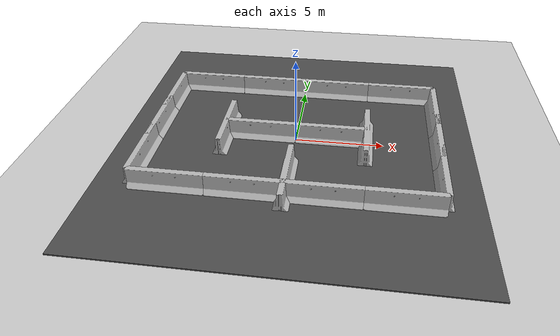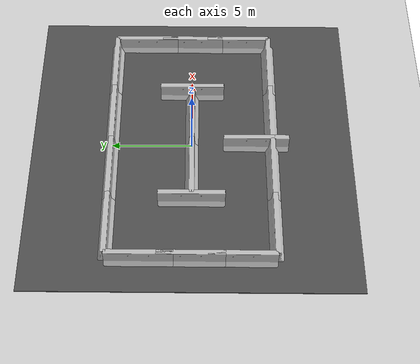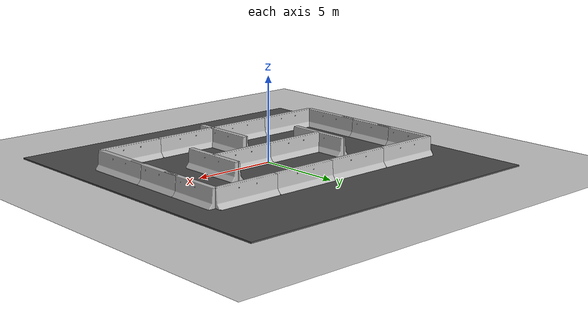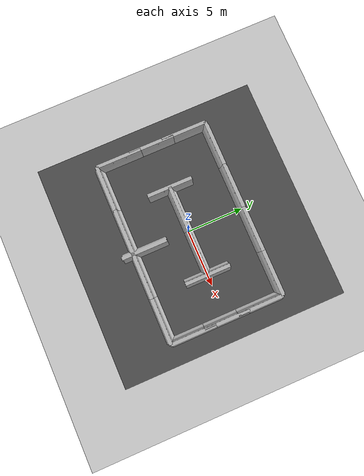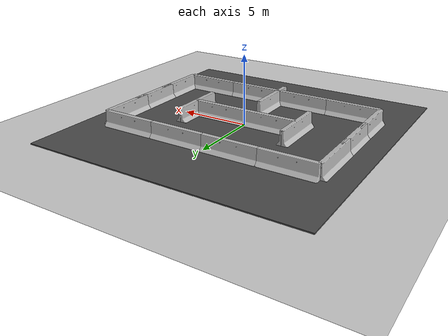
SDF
<sdf version="1.7">
 <world name="default">
  <light name="sun" type="directional">
   <pose>0 0 10 0 -0 0</pose>
   <diffuse>0.8 0.8 0.8 1</diffuse>
   <specular>0.2 0.2 0.2 1</specular>
   <attenuation>
    <range>1000</range>
    <constant>0.9</constant>
    <linear>0.01</linear>
    <quadratic>0.001</quadratic>
   </attenuation>
   <direction>-0.5 0.1 -0.9</direction>
   <spot><inner_angle>0</inner_angle><outer_angle>0</outer_angle><falloff>0</falloff></spot>
  </light>
  <model name="ground_plane">
   <static>1</static>
   <link name="link">
    <collision name="collision">
     <geometry><plane><normal>0 0 1</normal><size>100 100</size></plane></geometry>
     <surface>
      <contact><collide_bitmask>65535</collide_bitmask></contact>
      <friction><ode><mu>100</mu><mu2>50</mu2></ode></friction>
     </surface>
    </collision>
    <visual name="visual">
     <cast_shadows>0</cast_shadows>
     <geometry><plane><normal>0 0 1</normal><size>100 100</size></plane></geometry>
     <material>
      <script><uri>file://media/materials/scripts/gazebo.material</uri><name>Gazebo/Grey</name></script>
     </material>
    </visual>
   </link>
  </model>
  <gravity>0 0 -9.8</gravity>
  <magnetic_field>6e-06 2.3e-05 -4.2e-05</magnetic_field>
  <atmosphere type="adiabatic"/>
  <physics type="ode">
   <max_step_size>0.001</max_step_size>
   <real_time_factor>1</real_time_factor>
   <real_time_update_rate>1000</real_time_update_rate>
  </physics>
  <scene><ambient>0.4 0.4 0.4 1</ambient><background>0.7 0.7 0.7 1</background><shadows>1</shadows></scene>
  <audio><device>default</device></audio>
  <spherical_coordinates>
   <surface_model>EARTH_WGS84</surface_model>
   <latitude_deg>0</latitude_deg>
   <longitude_deg>0</longitude_deg>
   <elevation>0</elevation>
   <heading_deg>0</heading_deg>
  </spherical_coordinates>
  <model name="jersey_barrier">
   <static>1</static>
   <link name="link">
    <visual name="visual">
     <geometry><mesh><uri>model://jersey_barrier/meshes/jersey_barrier.dae</uri></mesh></geometry>
    </visual>
    <collision name="upright">
     <pose>0 0 0.5715 0 -0 0</pose>
     <geometry><box><size>4.06542 0.3063 1.143</size></box></geometry>
    </collision>
    <collision name="base">
     <pose>0 0 0.032258 0 -0 0</pose>
     <geometry><box><size>4.06542 0.8107 0.064516</size></box></geometry>
    </collision>
    <collision name="base2">
     <pose>0 0 0.1 0 -0 0</pose>
     <geometry><box><size>4.06542 0.65 0.1</size></box></geometry>
    </collision>
    <collision name="base3">
     <pose>0 0 0.2 0 -0 0</pose>
     <geometry><box><size>4.06542 0.5 0.1</size></box></geometry>
    </collision>
    <collision name="left-angle">
     <pose>0 -0.224 0.2401 0.9 -0 0</pose>
     <geometry><box><size>4.06542 0.5 0.064516</size></box></geometry>
    </collision>
    <collision name="right-angle">
     <pose>0 0.224 0.2401 -0.9 0 0</pose>
     <geometry><box><size>4.06542 0.5 0.064516</size></box></geometry>
    </collision>
   </link>
   <pose>2 5 0 0 -0 0</pose>
  </model>
  <model name="asphalt_plane">
   <static>1</static>
   <link name="link">
    <collision name="collision"><geometry><box><size>20 20 0.1</size></box></geometry></collision>
    <visual name="visual">
     <cast_shadows>0</cast_shadows>
     <geometry><box><size>20 20 0.1</size></box></geometry>
     <material>
      <script>
       <uri>model://asphalt_plane/materials/scripts</uri>
       <uri>model://asphalt_plane/materials/textures</uri>
       <name>vrc/asphalt</name>
      </script>
     </material>
    </visual>
   </link>
  </model>
  <model name="jersey_barrier_clone">
   <static>1</static>
   <link name="link">
    <visual name="visual">
     <geometry><mesh><uri>model://jersey_barrier/meshes/jersey_barrier.dae</uri></mesh></geometry>
    </visual>
    <collision name="upright">
     <pose>0 0 0.5715 0 -0 0</pose>
     <geometry><box><size>4.06542 0.3063 1.143</size></box></geometry>
    </collision>
    <collision name="base">
     <pose>0 0 0.032258 0 -0 0</pose>
     <geometry><box><size>4.06542 0.8107 0.064516</size></box></geometry>
    </collision>
    <collision name="base2">
     <pose>0 0 0.1 0 -0 0</pose>
     <geometry><box><size>4.06542 0.65 0.1</size></box></geometry>
    </collision>
    <collision name="base3">
     <pose>0 0 0.2 0 -0 0</pose>
     <geometry><box><size>4.06542 0.5 0.1</size></box></geometry>
    </collision>
    <collision name="left-angle">
     <pose>0 -0.224 0.2401 0.9 -0 0</pose>
     <geometry><box><size>4.06542 0.5 0.064516</size></box></geometry>
    </collision>
    <collision name="right-angle">
     <pose>0 0.224 0.2401 -0.9 0 0</pose>
     <geometry><box><size>4.06542 0.5 0.064516</size></box></geometry>
    </collision>
   </link>
   <pose>-2 5 0 0 -0 0</pose>
  </model>
  <model name="jersey_barrier_clone_0">
   <static>1</static>
   <link name="link">
    <visual name="visual">
     <geometry><mesh><uri>model://jersey_barrier/meshes/jersey_barrier.dae</uri></mesh></geometry>
    </visual>
    <collision name="upright">
     <pose>0 0 0.5715 0 -0 0</pose>
     <geometry><box><size>4.06542 0.3063 1.143</size></box></geometry>
    </collision>
    <collision name="base">
     <pose>0 0 0.032258 0 -0 0</pose>
     <geometry><box><size>4.06542 0.8107 0.064516</size></box></geometry>
    </collision>
    <collision name="base2">
     <pose>0 0 0.1 0 -0 0</pose>
     <geometry><box><size>4.06542 0.65 0.1</size></box></geometry>
    </collision>
    <collision name="base3">
     <pose>0 0 0.2 0 -0 0</pose>
     <geometry><box><size>4.06542 0.5 0.1</size></box></geometry>
    </collision>
    <collision name="left-angle">
     <pose>0 -0.224 0.2401 0.9 -0 0</pose>
     <geometry><box><size>4.06542 0.5 0.064516</size></box></geometry>
    </collision>
    <collision name="right-angle">
     <pose>0 0.224 0.2401 -0.9 0 0</pose>
     <geometry><box><size>4.06542 0.5 0.064516</size></box></geometry>
    </collision>
   </link>
   <pose>-6 5 0 0 -0 0</pose>
  </model>
  <model name="jersey_barrier_clone_1">
   <static>1</static>
   <link name="link">
    <visual name="visual">
     <geometry><mesh><uri>model://jersey_barrier/meshes/jersey_barrier.dae</uri></mesh></geometry>
    </visual>
    <collision name="upright">
     <pose>0 0 0.5715 0 -0 0</pose>
     <geometry><box><size>4.06542 0.3063 1.143</size></box></geometry>
    </collision>
    <collision name="base">
     <pose>0 0 0.032258 0 -0 0</pose>
     <geometry><box><size>4.06542 0.8107 0.064516</size></box></geometry>
    </collision>
    <collision name="base2">
     <pose>0 0 0.1 0 -0 0</pose>
     <geometry><box><size>4.06542 0.65 0.1</size></box></geometry>
    </collision>
    <collision name="base3">
     <pose>0 0 0.2 0 -0 0</pose>
     <geometry><box><size>4.06542 0.5 0.1</size></box></geometry>
    </collision>
    <collision name="left-angle">
     <pose>0 -0.224 0.2401 0.9 -0 0</pose>
     <geometry><box><size>4.06542 0.5 0.064516</size></box></geometry>
    </collision>
    <collision name="right-angle">
     <pose>0 0.224 0.2401 -0.9 0 0</pose>
     <geometry><box><size>4.06542 0.5 0.064516</size></box></geometry>
    </collision>
   </link>
   <pose>6 5 0 0 -0 0</pose>
  </model>
  <model name="jersey_barrier_clone_2">
   <static>1</static>
   <link name="link">
    <visual name="visual">
     <geometry><mesh><uri>model://jersey_barrier/meshes/jersey_barrier.dae</uri></mesh></geometry>
    </visual>
    <collision name="upright">
     <pose>0 0 0.5715 0 -0 0</pose>
     <geometry><box><size>4.06542 0.3063 1.143</size></box></geometry>
    </collision>
    <collision name="base">
     <pose>0 0 0.032258 0 -0 0</pose>
     <geometry><box><size>4.06542 0.8107 0.064516</size></box></geometry>
    </collision>
    <collision name="base2">
     <pose>0 0 0.1 0 -0 0</pose>
     <geometry><box><size>4.06542 0.65 0.1</size></box></geometry>
    </collision>
    <collision name="base3">
     <pose>0 0 0.2 0 -0 0</pose>
     <geometry><box><size>4.06542 0.5 0.1</size></box></geometry>
    </collision>
    <collision name="left-angle">
     <pose>0 -0.224 0.2401 0.9 -0 0</pose>
     <geometry><box><size>4.06542 0.5 0.064516</size></box></geometry>
    </collision>
    <collision name="right-angle">
     <pose>0 0.224 0.2401 -0.9 0 0</pose>
     <geometry><box><size>4.06542 0.5 0.064516</size></box></geometry>
    </collision>
   </link>
   <pose>-2 -5 0 0 -0 0</pose>
  </model>
  <model name="jersey_barrier_clone_3">
   <static>1</static>
   <link name="link">
    <visual name="visual">
     <geometry><mesh><uri>model://jersey_barrier/meshes/jersey_barrier.dae</uri></mesh></geometry>
    </visual>
    <collision name="upright">
     <pose>0 0 0.5715 0 -0 0</pose>
     <geometry><box><size>4.06542 0.3063 1.143</size></box></geometry>
    </collision>
    <collision name="base">
     <pose>0 0 0.032258 0 -0 0</pose>
     <geometry><box><size>4.06542 0.8107 0.064516</size></box></geometry>
    </collision>
    <collision name="base2">
     <pose>0 0 0.1 0 -0 0</pose>
     <geometry><box><size>4.06542 0.65 0.1</size></box></geometry>
    </collision>
    <collision name="base3">
     <pose>0 0 0.2 0 -0 0</pose>
     <geometry><box><size>4.06542 0.5 0.1</size></box></geometry>
    </collision>
    <collision name="left-angle">
     <pose>0 -0.224 0.2401 0.9 -0 0</pose>
     <geometry><box><size>4.06542 0.5 0.064516</size></box></geometry>
    </collision>
    <collision name="right-angle">
     <pose>0 0.224 0.2401 -0.9 0 0</pose>
     <geometry><box><size>4.06542 0.5 0.064516</size></box></geometry>
    </collision>
   </link>
   <pose>2 -5 0 0 -0 0</pose>
  </model>
  <model name="jersey_barrier_clone_4">
   <static>1</static>
   <link name="link">
    <visual name="visual">
     <geometry><mesh><uri>model://jersey_barrier/meshes/jersey_barrier.dae</uri></mesh></geometry>
    </visual>
    <collision name="upright">
     <pose>0 0 0.5715 0 -0 0</pose>
     <geometry><box><size>4.06542 0.3063 1.143</size></box></geometry>
    </collision>
    <collision name="base">
     <pose>0 0 0.032258 0 -0 0</pose>
     <geometry><box><size>4.06542 0.8107 0.064516</size></box></geometry>
    </collision>
    <collision name="base2">
     <pose>0 0 0.1 0 -0 0</pose>
     <geometry><box><size>4.06542 0.65 0.1</size></box></geometry>
    </collision>
    <collision name="base3">
     <pose>0 0 0.2 0 -0 0</pose>
     <geometry><box><size>4.06542 0.5 0.1</size></box></geometry>
    </collision>
    <collision name="left-angle">
     <pose>0 -0.224 0.2401 0.9 -0 0</pose>
     <geometry><box><size>4.06542 0.5 0.064516</size></box></geometry>
    </collision>
    <collision name="right-angle">
     <pose>0 0.224 0.2401 -0.9 0 0</pose>
     <geometry><box><size>4.06542 0.5 0.064516</size></box></geometry>
    </collision>
   </link>
   <pose>-6 -5 0 0 -0 0</pose>
  </model>
  <model name="jersey_barrier_clone_5">
   <static>1</static>
   <link name="link">
    <visual name="visual">
     <geometry><mesh><uri>model://jersey_barrier/meshes/jersey_barrier.dae</uri></mesh></geometry>
    </visual>
    <collision name="upright">
     <pose>0 0 0.5715 0 -0 0</pose>
     <geometry><box><size>4.06542 0.3063 1.143</size></box></geometry>
    </collision>
    <collision name="base">
     <pose>0 0 0.032258 0 -0 0</pose>
     <geometry><box><size>4.06542 0.8107 0.064516</size></box></geometry>
    </collision>
    <collision name="base2">
     <pose>0 0 0.1 0 -0 0</pose>
     <geometry><box><size>4.06542 0.65 0.1</size></box></geometry>
    </collision>
    <collision name="base3">
     <pose>0 0 0.2 0 -0 0</pose>
     <geometry><box><size>4.06542 0.5 0.1</size></box></geometry>
    </collision>
    <collision name="left-angle">
     <pose>0 -0.224 0.2401 0.9 -0 0</pose>
     <geometry><box><size>4.06542 0.5 0.064516</size></box></geometry>
    </collision>
    <collision name="right-angle">
     <pose>0 0.224 0.2401 -0.9 0 0</pose>
     <geometry><box><size>4.06542 0.5 0.064516</size></box></geometry>
    </collision>
   </link>
   <pose>6 -5 0 0 -0 0</pose>
  </model>
  <model name="jersey_barrier_clone_6">
   <static>1</static>
   <link name="link">
    <visual name="visual">
     <geometry><mesh><uri>model://jersey_barrier/meshes/jersey_barrier.dae</uri></mesh></geometry>
    </visual>
    <collision name="upright">
     <pose>0 0 0.5715 0 -0 0</pose>
     <geometry><box><size>4.06542 0.3063 1.143</size></box></geometry>
    </collision>
    <collision name="base">
     <pose>0 0 0.032258 0 -0 0</pose>
     <geometry><box><size>4.06542 0.8107 0.064516</size></box></geometry>
    </collision>
    <collision name="base2">
     <pose>0 0 0.1 0 -0 0</pose>
     <geometry><box><size>4.06542 0.65 0.1</size></box></geometry>
    </collision>
    <collision name="base3">
     <pose>0 0 0.2 0 -0 0</pose>
     <geometry><box><size>4.06542 0.5 0.1</size></box></geometry>
    </collision>
    <collision name="left-angle">
     <pose>0 -0.224 0.2401 0.9 -0 0</pose>
     <geometry><box><size>4.06542 0.5 0.064516</size></box></geometry>
    </collision>
    <collision name="right-angle">
     <pose>0 0.224 0.2401 -0.9 0 0</pose>
     <geometry><box><size>4.06542 0.5 0.064516</size></box></geometry>
    </collision>
   </link>
   <pose>-2 0 0 0 -0 0</pose>
  </model>
  <model name="jersey_barrier_clone_7">
   <static>1</static>
   <link name="link">
    <visual name="visual">
     <geometry><mesh><uri>model://jersey_barrier/meshes/jersey_barrier.dae</uri></mesh></geometry>
    </visual>
    <collision name="upright">
     <pose>0 0 0.5715 0 -0 0</pose>
     <geometry><box><size>4.06542 0.3063 1.143</size></box></geometry>
    </collision>
    <collision name="base">
     <pose>0 0 0.032258 0 -0 0</pose>
     <geometry><box><size>4.06542 0.8107 0.064516</size></box></geometry>
    </collision>
    <collision name="base2">
     <pose>0 0 0.1 0 -0 0</pose>
     <geometry><box><size>4.06542 0.65 0.1</size></box></geometry>
    </collision>
    <collision name="base3">
     <pose>0 0 0.2 0 -0 0</pose>
     <geometry><box><size>4.06542 0.5 0.1</size></box></geometry>
    </collision>
    <collision name="left-angle">
     <pose>0 -0.224 0.2401 0.9 -0 0</pose>
     <geometry><box><size>4.06542 0.5 0.064516</size></box></geometry>
    </collision>
    <collision name="right-angle">
     <pose>0 0.224 0.2401 -0.9 0 0</pose>
     <geometry><box><size>4.06542 0.5 0.064516</size></box></geometry>
    </collision>
   </link>
   <pose>2 0 0 0 -0 0</pose>
  </model>
  <model name="jersey_barrier_clone_8">
   <static>1</static>
   <link name="link">
    <visual name="visual">
     <geometry><mesh><uri>model://jersey_barrier/meshes/jersey_barrier.dae</uri></mesh></geometry>
    </visual>
    <collision name="upright">
     <pose>0 0 0.5715 0 -0 0</pose>
     <geometry><box><size>4.06542 0.3063 1.143</size></box></geometry>
    </collision>
    <collision name="base">
     <pose>0 0 0.032258 0 -0 0</pose>
     <geometry><box><size>4.06542 0.8107 0.064516</size></box></geometry>
    </collision>
    <collision name="base2">
     <pose>0 0 0.1 0 -0 0</pose>
     <geometry><box><size>4.06542 0.65 0.1</size></box></geometry>
    </collision>
    <collision name="base3">
     <pose>0 0 0.2 0 -0 0</pose>
     <geometry><box><size>4.06542 0.5 0.1</size></box></geometry>
    </collision>
    <collision name="left-angle">
     <pose>0 -0.224 0.2401 0.9 -0 0</pose>
     <geometry><box><size>4.06542 0.5 0.064516</size></box></geometry>
    </collision>
    <collision name="right-angle">
     <pose>0 0.224 0.2401 -0.9 0 0</pose>
     <geometry><box><size>4.06542 0.5 0.064516</size></box></geometry>
    </collision>
   </link>
   <pose>-8 0 0 0 -0 1.57</pose>
  </model>
  <model name="jersey_barrier_clone_8_clone">
   <static>1</static>
   <link name="link">
    <visual name="visual">
     <geometry><mesh><uri>model://jersey_barrier/meshes/jersey_barrier.dae</uri></mesh></geometry>
    </visual>
    <collision name="upright">
     <pose>0 0 0.5715 0 -0 0</pose>
     <geometry><box><size>4.06542 0.3063 1.143</size></box></geometry>
    </collision>
    <collision name="base">
     <pose>0 0 0.032258 0 -0 0</pose>
     <geometry><box><size>4.06542 0.8107 0.064516</size></box></geometry>
    </collision>
    <collision name="base2">
     <pose>0 0 0.1 0 -0 0</pose>
     <geometry><box><size>4.06542 0.65 0.1</size></box></geometry>
    </collision>
    <collision name="base3">
     <pose>0 0 0.2 0 -0 0</pose>
     <geometry><box><size>4.06542 0.5 0.1</size></box></geometry>
    </collision>
    <collision name="left-angle">
     <pose>0 -0.224 0.2401 0.9 -0 0</pose>
     <geometry><box><size>4.06542 0.5 0.064516</size></box></geometry>
    </collision>
    <collision name="right-angle">
     <pose>0 0.224 0.2401 -0.9 0 0</pose>
     <geometry><box><size>4.06542 0.5 0.064516</size></box></geometry>
    </collision>
   </link>
   <pose>-8 -3 0 0 -0 1.57</pose>
  </model>
  <model name="jersey_barrier_clone_8_clone_0">
   <static>1</static>
   <link name="link">
    <visual name="visual">
     <geometry><mesh><uri>model://jersey_barrier/meshes/jersey_barrier.dae</uri></mesh></geometry>
    </visual>
    <collision name="upright">
     <pose>0 0 0.5715 0 -0 0</pose>
     <geometry><box><size>4.06542 0.3063 1.143</size></box></geometry>
    </collision>
    <collision name="base">
     <pose>0 0 0.032258 0 -0 0</pose>
     <geometry><box><size>4.06542 0.8107 0.064516</size></box></geometry>
    </collision>
    <collision name="base2">
     <pose>0 0 0.1 0 -0 0</pose>
     <geometry><box><size>4.06542 0.65 0.1</size></box></geometry>
    </collision>
    <collision name="base3">
     <pose>0 0 0.2 0 -0 0</pose>
     <geometry><box><size>4.06542 0.5 0.1</size></box></geometry>
    </collision>
    <collision name="left-angle">
     <pose>0 -0.224 0.2401 0.9 -0 0</pose>
     <geometry><box><size>4.06542 0.5 0.064516</size></box></geometry>
    </collision>
    <collision name="right-angle">
     <pose>0 0.224 0.2401 -0.9 0 0</pose>
     <geometry><box><size>4.06542 0.5 0.064516</size></box></geometry>
    </collision>
   </link>
   <pose>-8 3 0 0 -0 1.57</pose>
  </model>
  <model name="jersey_barrier_clone_8_clone_1">
   <static>1</static>
   <link name="link">
    <visual name="visual">
     <geometry><mesh><uri>model://jersey_barrier/meshes/jersey_barrier.dae</uri></mesh></geometry>
    </visual>
    <collision name="upright">
     <pose>0 0 0.5715 0 -0 0</pose>
     <geometry><box><size>4.06542 0.3063 1.143</size></box></geometry>
    </collision>
    <collision name="base">
     <pose>0 0 0.032258 0 -0 0</pose>
     <geometry><box><size>4.06542 0.8107 0.064516</size></box></geometry>
    </collision>
    <collision name="base2">
     <pose>0 0 0.1 0 -0 0</pose>
     <geometry><box><size>4.06542 0.65 0.1</size></box></geometry>
    </collision>
    <collision name="base3">
     <pose>0 0 0.2 0 -0 0</pose>
     <geometry><box><size>4.06542 0.5 0.1</size></box></geometry>
    </collision>
    <collision name="left-angle">
     <pose>0 -0.224 0.2401 0.9 -0 0</pose>
     <geometry><box><size>4.06542 0.5 0.064516</size></box></geometry>
    </collision>
    <collision name="right-angle">
     <pose>0 0.224 0.2401 -0.9 0 0</pose>
     <geometry><box><size>4.06542 0.5 0.064516</size></box></geometry>
    </collision>
   </link>
   <pose>-4 0 0 0 -0 1.57</pose>
  </model>
  <model name="jersey_barrier_clone_8_clone_2">
   <static>1</static>
   <link name="link">
    <visual name="visual">
     <geometry><mesh><uri>model://jersey_barrier/meshes/jersey_barrier.dae</uri></mesh></geometry>
    </visual>
    <collision name="upright">
     <pose>0 0 0.5715 0 -0 0</pose>
     <geometry><box><size>4.06542 0.3063 1.143</size></box></geometry>
    </collision>
    <collision name="base">
     <pose>0 0 0.032258 0 -0 0</pose>
     <geometry><box><size>4.06542 0.8107 0.064516</size></box></geometry>
    </collision>
    <collision name="base2">
     <pose>0 0 0.1 0 -0 0</pose>
     <geometry><box><size>4.06542 0.65 0.1</size></box></geometry>
    </collision>
    <collision name="base3">
     <pose>0 0 0.2 0 -0 0</pose>
     <geometry><box><size>4.06542 0.5 0.1</size></box></geometry>
    </collision>
    <collision name="left-angle">
     <pose>0 -0.224 0.2401 0.9 -0 0</pose>
     <geometry><box><size>4.06542 0.5 0.064516</size></box></geometry>
    </collision>
    <collision name="right-angle">
     <pose>0 0.224 0.2401 -0.9 0 0</pose>
     <geometry><box><size>4.06542 0.5 0.064516</size></box></geometry>
    </collision>
   </link>
   <pose>0 -4 0 0 -0 1.57</pose>
  </model>
  <model name="jersey_barrier_clone_8_clone_3">
   <static>1</static>
   <link name="link">
    <visual name="visual">
     <geometry><mesh><uri>model://jersey_barrier/meshes/jersey_barrier.dae</uri></mesh></geometry>
    </visual>
    <collision name="upright">
     <pose>0 0 0.5715 0 -0 0</pose>
     <geometry><box><size>4.06542 0.3063 1.143</size></box></geometry>
    </collision>
    <collision name="base">
     <pose>0 0 0.032258 0 -0 0</pose>
     <geometry><box><size>4.06542 0.8107 0.064516</size></box></geometry>
    </collision>
    <collision name="base2">
     <pose>0 0 0.1 0 -0 0</pose>
     <geometry><box><size>4.06542 0.65 0.1</size></box></geometry>
    </collision>
    <collision name="base3">
     <pose>0 0 0.2 0 -0 0</pose>
     <geometry><box><size>4.06542 0.5 0.1</size></box></geometry>
    </collision>
    <collision name="left-angle">
     <pose>0 -0.224 0.2401 0.9 -0 0</pose>
     <geometry><box><size>4.06542 0.5 0.064516</size></box></geometry>
    </collision>
    <collision name="right-angle">
     <pose>0 0.224 0.2401 -0.9 0 0</pose>
     <geometry><box><size>4.06542 0.5 0.064516</size></box></geometry>
    </collision>
   </link>
   <pose>4 0 0 0 -0 1.57</pose>
  </model>
  <model name="jersey_barrier_clone_8_clone_4">
   <static>1</static>
   <link name="link">
    <visual name="visual">
     <geometry><mesh><uri>model://jersey_barrier/meshes/jersey_barrier.dae</uri></mesh></geometry>
    </visual>
    <collision name="upright">
     <pose>0 0 0.5715 0 -0 0</pose>
     <geometry><box><size>4.06542 0.3063 1.143</size></box></geometry>
    </collision>
    <collision name="base">
     <pose>0 0 0.032258 0 -0 0</pose>
     <geometry><box><size>4.06542 0.8107 0.064516</size></box></geometry>
    </collision>
    <collision name="base2">
     <pose>0 0 0.1 0 -0 0</pose>
     <geometry><box><size>4.06542 0.65 0.1</size></box></geometry>
    </collision>
    <collision name="base3">
     <pose>0 0 0.2 0 -0 0</pose>
     <geometry><box><size>4.06542 0.5 0.1</size></box></geometry>
    </collision>
    <collision name="left-angle">
     <pose>0 -0.224 0.2401 0.9 -0 0</pose>
     <geometry><box><size>4.06542 0.5 0.064516</size></box></geometry>
    </collision>
    <collision name="right-angle">
     <pose>0 0.224 0.2401 -0.9 0 0</pose>
     <geometry><box><size>4.06542 0.5 0.064516</size></box></geometry>
    </collision>
   </link>
   <pose>8 3 0 0 -0 1.57</pose>
  </model>
  <model name="jersey_barrier_clone_8_clone_5">
   <static>1</static>
   <link name="link">
    <visual name="visual">
     <geometry><mesh><uri>model://jersey_barrier/meshes/jersey_barrier.dae</uri></mesh></geometry>
    </visual>
    <collision name="upright">
     <pose>0 0 0.5715 0 -0 0</pose>
     <geometry><box><size>4.06542 0.3063 1.143</size></box></geometry>
    </collision>
    <collision name="base">
     <pose>0 0 0.032258 0 -0 0</pose>
     <geometry><box><size>4.06542 0.8107 0.064516</size></box></geometry>
    </collision>
    <collision name="base2">
     <pose>0 0 0.1 0 -0 0</pose>
     <geometry><box><size>4.06542 0.65 0.1</size></box></geometry>
    </collision>
    <collision name="base3">
     <pose>0 0 0.2 0 -0 0</pose>
     <geometry><box><size>4.06542 0.5 0.1</size></box></geometry>
    </collision>
    <collision name="left-angle">
     <pose>0 -0.224 0.2401 0.9 -0 0</pose>
     <geometry><box><size>4.06542 0.5 0.064516</size></box></geometry>
    </collision>
    <collision name="right-angle">
     <pose>0 0.224 0.2401 -0.9 0 0</pose>
     <geometry><box><size>4.06542 0.5 0.064516</size></box></geometry>
    </collision>
   </link>
   <pose>8 0 0 0 -0 1.57</pose>
  </model>
  <model name="jersey_barrier_clone_8_clone_6">
   <static>1</static>
   <link name="link">
    <visual name="visual">
     <geometry><mesh><uri>model://jersey_barrier/meshes/jersey_barrier.dae</uri></mesh></geometry>
    </visual>
    <collision name="upright">
     <pose>0 0 0.5715 0 -0 0</pose>
     <geometry><box><size>4.06542 0.3063 1.143</size></box></geometry>
    </collision>
    <collision name="base">
     <pose>0 0 0.032258 0 -0 0</pose>
     <geometry><box><size>4.06542 0.8107 0.064516</size></box></geometry>
    </collision>
    <collision name="base2">
     <pose>0 0 0.1 0 -0 0</pose>
     <geometry><box><size>4.06542 0.65 0.1</size></box></geometry>
    </collision>
    <collision name="base3">
     <pose>0 0 0.2 0 -0 0</pose>
     <geometry><box><size>4.06542 0.5 0.1</size></box></geometry>
    </collision>
    <collision name="left-angle">
     <pose>0 -0.224 0.2401 0.9 -0 0</pose>
     <geometry><box><size>4.06542 0.5 0.064516</size></box></geometry>
    </collision>
    <collision name="right-angle">
     <pose>0 0.224 0.2401 -0.9 0 0</pose>
     <geometry><box><size>4.06542 0.5 0.064516</size></box></geometry>
    </collision>
   </link>
   <pose>8 -3 0 0 -0 1.57</pose>
  </model>
 </world>
</sdf>
